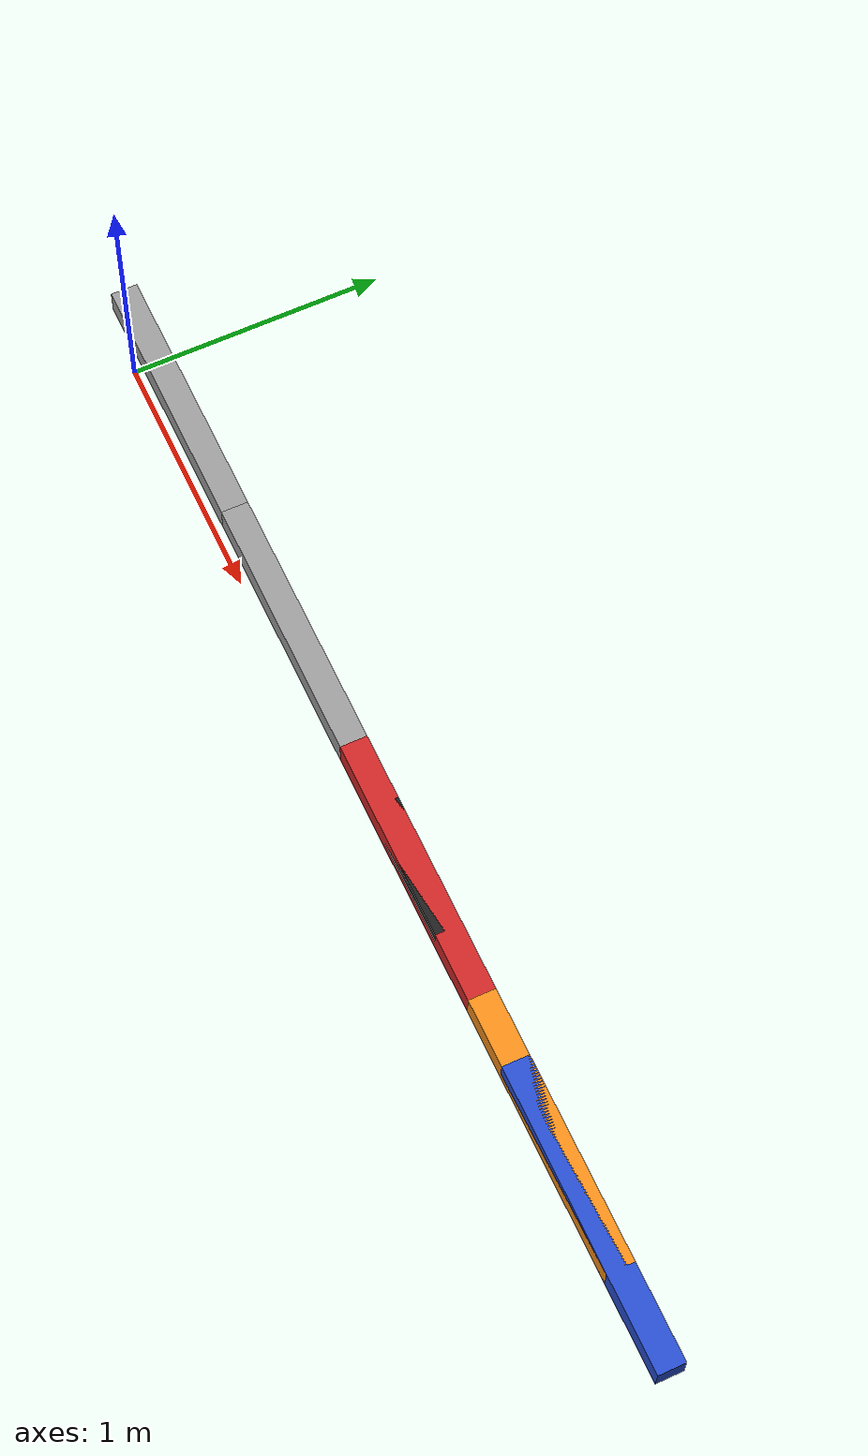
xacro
<?xml version="1.0"?>
<!-- Parallel Manipulator -->
<robot name="parallel_manipulator"
  xmlns:xacro="http://www.ros.org/wiki/xacro"
  xmlns:controller="http://playerstage.sourceforge.net/gazebo/xmlschema/#controller">

  <xacro:property name="PI" value="3.1415926535897931"/>

  <gazebo>
    <plugin name="ros_control" filename="libros_control_gazebo_plugin.so">
      <ns>parallel/ros_control</ns>
      <robotSimType>ros_control_gazebo_tests/RobotSimParallel</robotSimType>
      <controlPeriod>0.001</controlPeriod>
    </plugin>
  </gazebo>

  <!-- Link1 -->
  <gazebo reference="link1">
    <material>Gazebo/Grey</material>
  </gazebo>

  <!-- Link2 -->
  <gazebo reference="link2">
    <material>Gazebo/Grey</material>
  </gazebo>

  <!-- Link3 -->
  <gazebo reference="link3">
    <material>Gazebo/Red</material>
  </gazebo>

  <!-- Link4 -->
  <gazebo reference="link4">
    <material>Gazebo/Blue</material>
  </gazebo>

  <!-- Link5 -->
  <gazebo reference="link5">
    <material>Gazebo/Black</material>
  </gazebo>

  <!-- Link6 -->
  <gazebo reference="link6">
    <material>Gazebo/Orange</material>
  </gazebo>

  <link name="world"/>

  <link name="link1">
    <collision name="collision">
      <origin xyz="0.5 0 0" rpy="0 0 0"/>
      <geometry> <box size="0.9 0.1 0.1"/> </geometry>
    </collision>
    <visual name="visual">
      <origin xyz="0.5 0 0" rpy="0 0 0"/>
      <geometry> <box size="1 0.1 0.1"/> </geometry>
     <material name="grey"/>
    </visual>
    <inertial>
      <origin xyz="0.5 0 0" rpy="0 0 0"/>
      <mass value="1"/>
      <inertia
        ixx="1.0" ixy="0.0" ixz="0.0"
        iyy="1.0" iyz="0.0"
        izz="1.0"/>
    </inertial>
  </link>

  <link name="link2">
    <collision name="collision">
      <origin xyz="0.5 0 0" rpy="0 0 0"/>
      <geometry> <box size="0.9 0.1 0.1"/> </geometry>
    </collision>
    <visual name="visual">
      <origin xyz="0.5 0 0" rpy="0 0 0"/>
      <geometry> <box size="1 0.1 0.1"/> </geometry>
      <material name="grey"/>
    </visual>
    <inertial>
      <origin xyz="0.5 0 0" rpy="0 0 0"/>
      <mass value="1"/>
      <inertia
        ixx="1.0" ixy="0.0" ixz="0.0"
        iyy="1.0" iyz="0.0"
        izz="1.0"/>
    </inertial>
  </link>

  <link name="link3">
    <collision name="collision">
      <origin xyz="0.5 0 0" rpy="0 0 0"/>
      <geometry> <box size="0.9 0.1 0.1"/> </geometry>
    </collision>
    <visual name="visual">
      <origin xyz="0.5 0 0" rpy="0 0 0"/>
      <geometry> <box size="1 0.1 0.1"/> </geometry>
      <material name="red"/>
    </visual>
    <inertial>
      <origin xyz="0.5 0 0" rpy="0 0 0"/>
      <mass value="1"/>
      <inertia
        ixx="1.0" ixy="0.0" ixz="0.0"
        iyy="1.0" iyz="0.0"
        izz="1.0"/>
    </inertial>
  </link>

  <link name="link4">
       <collision name="collision">
      <origin xyz=".8 0 0" rpy="0 0 0"/>
      <geometry> <box size="1.1 0.1 0.1"/> </geometry>
    </collision>
    <visual name="visual">
      <origin xyz="0.8 0 0" rpy="0 0 0"/>
      <geometry> <box size="1.1 0.1 0.1"/> </geometry>
      <material name="blue"/>
    </visual>
    <inertial>
      <origin xyz="0.5 0 0" rpy="0 0 0"/>
      <mass value="1"/>
      <inertia
        ixx="1.0" ixy="0.0" ixz="0.0"
        iyy="1.0" iyz="0.0"
        izz="1.0"/>
    </inertial>
  </link>

  <link name="link5">
    <collision name="collision">
    <origin xyz="0.5 0 0" rpy="0 0 0"/>
      <geometry> <box size="0.9 0.1 0.1"/> </geometry>
    </collision>
    <visual name="visual">
      <origin xyz="0.5 0 0" rpy="0 0 0"/>
      <geometry> <box size=".5 0.1 0.1"/> </geometry>
      <material name="black"/>
    </visual>
    <inertial>
      <origin xyz="0.5 0 0" rpy="0 0 0"/>
      <mass value="1"/>
      <inertia
        ixx="1.0" ixy="0.0" ixz="0.0"
        iyy="1.0" iyz="0.0"
        izz="1.0"/>
    </inertial>
  </link>

  <link name="link6">
    <collision name="collision">
      <origin xyz="0.5 0 0" rpy="0 0 0"/>
      <geometry> <box size="0.9 0.1 0.1"/> </geometry>
    </collision>
    <visual name="visual">
      <origin xyz="0.5 0 0" rpy="0 0 0"/>
      <geometry> <box size="1 0.1 0.1"/> </geometry>
      <material name="orange"/>
    </visual>
    <inertial>
      <origin xyz="0.5 0 0" rpy="0 0 0"/>
      <mass value="1"/>
      <inertia
        ixx="1.0" ixy="0.0" ixz="0.0"
        iyy="1.0" iyz="0.0"
        izz="1.0"/>
    </inertial>
  </link>

  <joint name="fixed" type="fixed">
    <parent link="world"/>
    <child link="link1"/>
    <origin xyz="0 0 .5" rpy="${PI/2} 0 0"/>
  </joint>

  <joint name="joint1" type="continuous">
    <parent link="link1"/>
    <child link="link2"/>
    <origin xyz="1 0 0" rpy="0 0 0"/>
    <axis xyz="0 1 0"/>
  </joint>

  <joint name="joint2" type="continuous">
    <parent link="link2"/>
    <child link="link3"/>
    <origin xyz="1 0 0" rpy="0 0 0"/>
    <axis xyz="0 1 0"/>
  </joint>

  <joint name="joint3" type="continuous">
    <parent link="link3"/>
    <child link="link4"/>
    <origin xyz="1 0 0" rpy="0 0 0"/>
    <axis xyz="0 1 0"/>
  </joint>

  <joint name="joint4" type="continuous">
    <parent link="link2"/>
    <child link="link5"/>
    <origin xyz="1 0 0" rpy="0 0 0"/>
    <axis xyz="0 1 0"/>
  </joint>

  <joint name="joint5" type="continuous">
    <parent link="link5"/>
    <child link="link6"/>
    <origin xyz="1 0 0" rpy="0 0 0"/>
    <axis xyz="0 1 0"/>
  </joint>
</robot>
